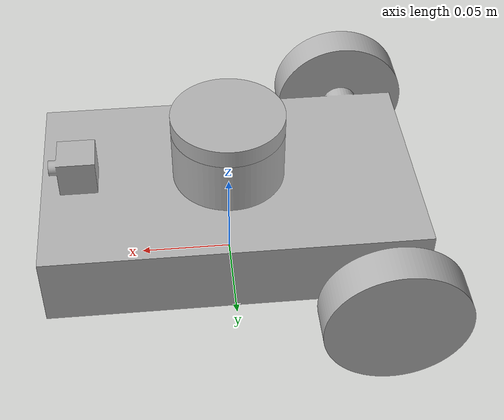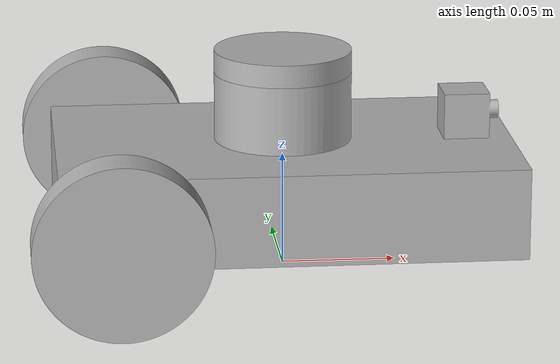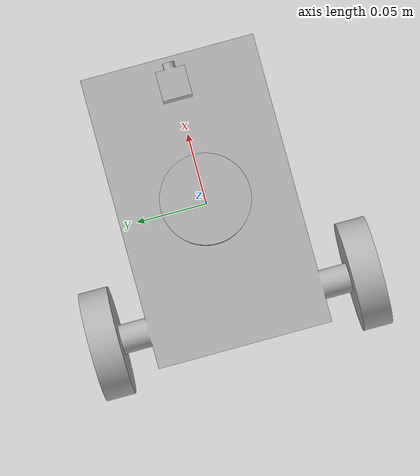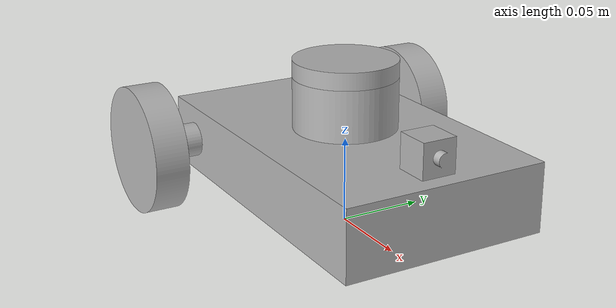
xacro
<?xml version="1.0" ?>
<robot name="David_WS2" xmlns:xacro="http://www.ros.org/wiki/xacro">

<xacro:include filename="$(find David_WS2_description)/urdf/materials.xacro" />
<xacro:include filename="$(find David_WS2_description)/urdf/David_WS2.ros2control.xml" />
<xacro:include filename="$(find David_WS2_description)/urdf/David_WS2.gazebo" />
<link name="base_link">
  <inertial>
    <origin xyz="-0.0008913252022397283 -1.720264503563007e-17 0.040307674387055174" rpy="0 0 0"/>
    <mass value="8.300506572251075"/>
    <inertia ixx="0.011487" iyy="0.027628" izz="0.0355" ixy="-0.0" iyz="-0.0" ixz="-2.1e-05"/>
  </inertial>
  <visual>
    <origin xyz="0 0 0" rpy="0 0 0"/>
    <geometry>
      <mesh filename="file://$(find David_WS2_description)/meshes/base_link.stl" scale="0.001 0.001 0.001"/>
    </geometry>
    <material name="silver"/>
  </visual>
  <collision>
    <origin xyz="0 0 0" rpy="0 0 0"/>
    <geometry>
      <mesh filename="file://$(find David_WS2_description)/meshes/base_link.stl" scale="0.001 0.001 0.001"/>
    </geometry>
  </collision>
</link>

<link name="lidar_1">
  <inertial>
    <origin xyz="5.026061718855929e-18 0.0 0.0050000000000000044" rpy="0 0 0"/>
    <mass value="0.2219535209761188"/>
    <inertia ixx="5.2e-05" iyy="5.2e-05" izz="0.0001" ixy="0.0" iyz="-0.0" ixz="-0.0"/>
  </inertial>
  <visual>
    <origin xyz="-0.0 -0.0 -0.0875" rpy="0 0 0"/>
    <geometry>
      <mesh filename="file://$(find David_WS2_description)/meshes/lidar_1.stl" scale="0.001 0.001 0.001"/>
    </geometry>
    <material name="silver"/>
  </visual>
  <collision>
    <origin xyz="-0.0 -0.0 -0.0875" rpy="0 0 0"/>
    <geometry>
      <mesh filename="file://$(find David_WS2_description)/meshes/lidar_1.stl" scale="0.001 0.001 0.001"/>
    </geometry>
  </collision>
</link>

<link name="camera_1">
  <inertial>
    <origin xyz="-0.019619262139605978 1.2740373127214816e-14 0.01001522954527926" rpy="0 0 0"/>
    <mass value="0.06477292024525207"/>
    <inertia ixx="4e-06" iyy="4e-06" izz="4e-06" ixy="-0.0" iyz="-0.0" ixz="-0.0"/>
  </inertial>
  <visual>
    <origin xyz="-0.1 -0.0 -0.0575" rpy="0 0 0"/>
    <geometry>
      <mesh filename="file://$(find David_WS2_description)/meshes/camera_1.stl" scale="0.001 0.001 0.001"/>
    </geometry>
    <material name="silver"/>
  </visual>
  <collision>
    <origin xyz="-0.1 -0.0 -0.0575" rpy="0 0 0"/>
    <geometry>
      <mesh filename="file://$(find David_WS2_description)/meshes/camera_1.stl" scale="0.001 0.001 0.001"/>
    </geometry>
  </collision>
</link>

<link name="castor_1">
  <inertial>
    <origin xyz="-0.04000000000000029 4.5236341900007805e-17 -0.006391402495744495" rpy="0 0 0"/>
    <mass value="0.1627226693245905"/>
    <inertia ixx="2.2e-05" iyy="2.2e-05" izz="3.8e-05" ixy="-0.0" iyz="-0.0" ixz="-0.0"/>
  </inertial>
  <visual>
    <origin xyz="-0.1 -0.0 -0.0175" rpy="0 0 0"/>
    <geometry>
      <mesh filename="file://$(find David_WS2_description)/meshes/castor_1.stl" scale="0.001 0.001 0.001"/>
    </geometry>
    <material name="silver"/>
  </visual>
  <collision>
    <origin xyz="-0.1 -0.0 -0.0175" rpy="0 0 0"/>
    <geometry>
      <mesh filename="file://$(find David_WS2_description)/meshes/castor_1.stl" scale="0.001 0.001 0.001"/>
    </geometry>
  </collision>
</link>

<link name="left_wheel_1">
  <inertial>
    <origin xyz="0.0 0.010000000000000023 6.938893903907228e-18" rpy="0 0 0"/>
    <mass value="0.6936047530503714"/>
    <inertia ixx="0.000267" iyy="0.000488" izz="0.000267" ixy="-0.0" iyz="0.0" ixz="0.0"/>
  </inertial>
  <visual>
    <origin xyz="0.075 -0.08 -0.0375" rpy="0 0 0"/>
    <geometry>
      <mesh filename="file://$(find David_WS2_description)/meshes/left_wheel_1.stl" scale="0.001 0.001 0.001"/>
    </geometry>
    <material name="silver"/>
  </visual>
  <collision>
    <origin xyz="0 0.01 0" rpy="1.5707963 0 0"/>
    <geometry>
      <cylinder radius="0.0375" length="0.02"/>
    </geometry>
  </collision>
</link>

<link name="right_wheel_1">
  <inertial>
    <origin xyz="0.0 -0.009999999999999995 6.938893903907228e-18" rpy="0 0 0"/>
    <mass value="0.6936047530503714"/>
    <inertia ixx="0.000267" iyy="0.000488" izz="0.000267" ixy="0.0" iyz="0.0" ixz="0.0"/>
  </inertial>
  <visual>
    <origin xyz="0.075 0.08 -0.0375" rpy="0 0 0"/>
    <geometry>
      <mesh filename="file://$(find David_WS2_description)/meshes/right_wheel_1.stl" scale="0.001 0.001 0.001"/>
    </geometry>
    <material name="silver"/>
  </visual>
  <collision>
    <origin xyz="0 -0.01 0" rpy="1.5707963 0 0"/>
    <geometry>
      <cylinder radius="0.0375" length="0.02"/>
    </geometry>
  </collision>
</link>

<joint name="lidarjoint" type="fixed">
  <origin xyz="0.0 0.0 0.0875" rpy="0 0 0"/>
  <parent link="base_link"/>
  <child link="lidar_1"/>
</joint>

<joint name="camerajoint" type="fixed">
  <origin xyz="0.1 0.0 0.0575" rpy="0 0 0"/>
  <parent link="base_link"/>
  <child link="camera_1"/>
</joint>

<joint name="casterjoint" type="fixed">
  <origin xyz="0.1 0.0 0.0175" rpy="0 0 0"/>
  <parent link="base_link"/>
  <child link="castor_1"/>
</joint>

<!-- RUEDA IZQUIERDA -->
<joint name="left_joint" type="continuous">
  <origin xyz="-0.075 0.08 0.0375" rpy="0 0 0"/>
  <parent link="base_link"/>
  <child link="left_wheel_1"/>
  <axis xyz="0 1 0"/>
</joint>

<!-- RUEDA DERECHA -->
<joint name="right_joint" type="continuous">
  <origin xyz="-0.075 -0.08 0.0375" rpy="0 0 0"/>
  <parent link="base_link"/>
  <child link="right_wheel_1"/>
  <axis xyz="0 1 0"/>
</joint>

</robot>

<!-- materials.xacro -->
<robot name="David_WS2" xmlns:xacro="http://www.ros.org/wiki/xacro" >

<material name="silver">
  <color rgba="0.700 0.700 0.700 1.000"/>
</material>

</robot>

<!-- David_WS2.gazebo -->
<robot name="David_WS2" xmlns:xacro="http://www.ros.org/wiki/xacro" >

<xacro:property name="body_color" value="Gazebo/Silver" />

<gazebo reference="base_link">
  <material>${body_color}</material>
  <mu1>0.2</mu1>
  <mu2>0.2</mu2>
  <self_collide>false</self_collide>
  <gravity>true</gravity>
</gazebo>

<gazebo reference="lidar_1">
  <material>${body_color}</material>
  <mu1>0.2</mu1>
  <mu2>0.2</mu2>
  <self_collide>false</self_collide>
</gazebo>

<gazebo reference="camera_1">
  <material>${body_color}</material>
  <mu1>0.2</mu1>
  <mu2>0.2</mu2>
  <self_collide>false</self_collide>
</gazebo>

<gazebo reference="castor_1">
  <material>${body_color}</material>
  <mu1>0.2</mu1>
  <mu2>0.2</mu2>
  <self_collide>false</self_collide>
</gazebo>

<gazebo reference="left_wheel_1">
  <material>${body_color}</material>
  <mu1>1.0</mu1>
  <mu2>1.0</mu2>
  <self_collide>false</self_collide>
</gazebo>

<gazebo reference="right_wheel_1">
  <material>${body_color}</material>
  <mu1>1.0</mu1>
  <mu2>1.0</mu2>
  <self_collide>false</self_collide>
</gazebo>

<gazebo>
  <plugin filename="gz-sim-diff-drive-system"
          name="gz::sim::systems::DiffDrive">

    <left_joint>left_joint</left_joint>
    <right_joint>right_joint</right_joint>

    <wheel_separation>0.16</wheel_separation>
    <wheel_radius>0.0375</wheel_radius>

    <odom_publish_frequency>30</odom_publish_frequency>
    <topic>/cmd_vel</topic>

  </plugin>
</gazebo>
<!-- Publicar estados de las articulaciones -->
<gazebo>
  <plugin
    filename="gz-sim-joint-state-publisher-system"
    name="gz::sim::systems::JointStatePublisher">

    <joint_name>left_joint</joint_name>
    <joint_name>right_joint</joint_name>

    <update_rate>30</update_rate>

  </plugin>
</gazebo>
</robot>
